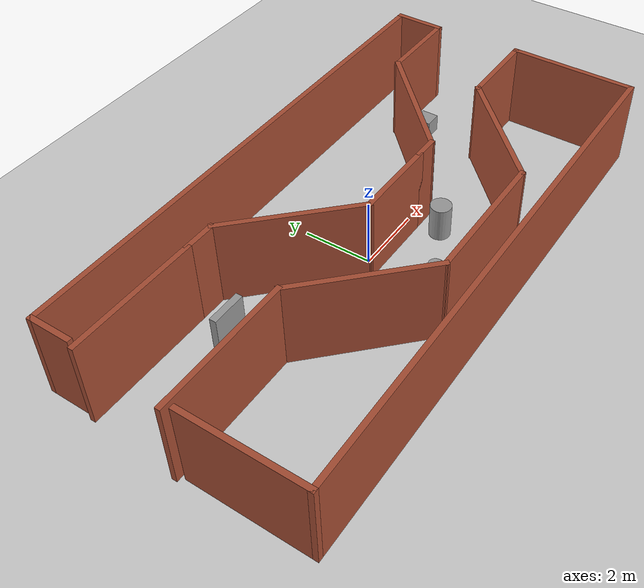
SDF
<sdf version="1.6">
 <world name="default">
  <plugin name="ros_interface_plugin" filename="librotors_gazebo_ros_interface_plugin.so"/>
  <plugin name="gazebo_octomap" filename="librotors_gazebo_octomap_plugin.so"/>
  <light name="sun" type="directional">
   <pose>0 0 10 0 -0 0</pose>
   <diffuse>0.8 0.8 0.8 1</diffuse>
   <specular>0.1 0.1 0.1 1</specular>
   <attenuation>
    <range>1000</range>
    <constant>0.9</constant>
    <linear>0.01</linear>
    <quadratic>0.001</quadratic>
   </attenuation>
   <direction>-0.5 0.5 -1</direction>
  </light>
  <model name="ground_plane">
   <static>1</static>
   <link name="link">
    <collision name="collision">
     <geometry><plane><normal>0 0 1</normal><size>100 100</size></plane></geometry>
     <surface><friction><ode><mu>100</mu><mu2>50</mu2></ode></friction></surface>
    </collision>
    <visual name="visual">
     <cast_shadows>0</cast_shadows>
     <geometry><plane><normal>0 0 1</normal><size>100 100</size></plane></geometry>
     <material>
      <script><uri>file://media/materials/scripts/gazebo.material</uri><name>Gazebo/Grey</name></script>
     </material>
    </visual>
   </link>
  </model>
  <gravity>0 0 -9.8</gravity>
  <magnetic_field>6e-06 2.3e-05 -4.2e-05</magnetic_field>
  <atmosphere type="adiabatic"/>
  <physics name="default_physics" default="0" type="ode">
   <max_step_size>0.001</max_step_size>
   <real_time_factor>1</real_time_factor>
   <real_time_update_rate>1000</real_time_update_rate>
  </physics>
  <scene><ambient>0.4 0.4 0.4 1</ambient><background>0.7 0.7 0.7 1</background><shadows>1</shadows></scene>
  <spherical_coordinates>
   <surface_model>EARTH_WGS84</surface_model>
   <latitude_deg>0</latitude_deg>
   <longitude_deg>0</longitude_deg>
   <elevation>0</elevation>
   <heading_deg>0</heading_deg>
  </spherical_coordinates>
  <model name="map_reduced2">
   <link name="Wall_0">
    <collision name="Wall_0_Collision">
     <geometry><box><size>4 0.15 2.5</size></box></geometry>
     <pose>0 0 1.25 0 -0 0</pose>
    </collision>
    <visual name="Wall_0_Visual">
     <pose>0 0 1.25 0 -0 0</pose>
     <geometry><box><size>4 0.15 2.5</size></box></geometry>
     <material>
      <script><uri>file://media/materials/scripts/gazebo.material</uri><name>Gazebo/Bricks</name></script>
      <ambient>1 1 1 1</ambient>
     </material>
    </visual>
    <pose>-5.82236 -0.160519 0 0 -0 0</pose>
   </link>
   <link name="Wall_1">
    <collision name="Wall_1_Collision">
     <geometry><box><size>4 0.15 2.5</size></box></geometry>
     <pose>0 0 1.25 0 -0 0</pose>
    </collision>
    <visual name="Wall_1_Visual">
     <pose>0 0 1.25 0 -0 0</pose>
     <geometry><box><size>4 0.15 2.5</size></box></geometry>
     <material>
      <script><uri>file://media/materials/scripts/gazebo.material</uri><name>Gazebo/Bricks</name></script>
      <ambient>1 1 1 1</ambient>
     </material>
    </visual>
    <pose>-2.53618 -1.5217 0 0 0 -0.785398</pose>
   </link>
   <link name="Wall_10">
    <collision name="Wall_10_Collision">
     <geometry><box><size>1 0.15 2.5</size></box></geometry>
     <pose>0 0 1.25 0 -0 0</pose>
    </collision>
    <visual name="Wall_10_Visual">
     <pose>0 0 1.25 0 -0 0</pose>
     <geometry><box><size>1 0.15 2.5</size></box></geometry>
     <material>
      <script><uri>file://media/materials/scripts/gazebo.material</uri><name>Gazebo/Bricks</name></script>
      <ambient>1 1 1 1</ambient>
     </material>
    </visual>
    <pose>-3.56495 2.41052 0 0 -0 0</pose>
   </link>
   <link name="Wall_11">
    <collision name="Wall_11_Collision">
     <geometry><box><size>4 0.15 2.5</size></box></geometry>
     <pose>0 0 1.25 0 -0 0</pose>
    </collision>
    <visual name="Wall_11_Visual">
     <pose>0 0 1.25 0 -0 0</pose>
     <geometry><box><size>4 0.15 2.5</size></box></geometry>
     <material>
      <script><uri>file://media/materials/scripts/gazebo.material</uri><name>Gazebo/Bricks</name></script>
      <ambient>1 1 1 1</ambient>
     </material>
    </visual>
    <pose>-1.77877 1.04934 0 0 0 -0.785398</pose>
   </link>
   <link name="Wall_12">
    <collision name="Wall_12_Collision">
     <geometry><box><size>2.5 0.15 2.5</size></box></geometry>
     <pose>0 0 1.25 0 -0 0</pose>
    </collision>
    <visual name="Wall_12_Visual">
     <pose>0 0 1.25 0 -0 0</pose>
     <geometry><box><size>2.5 0.15 2.5</size></box></geometry>
     <material>
      <script><uri>file://media/materials/scripts/gazebo.material</uri><name>Gazebo/Bricks</name></script>
      <ambient>1 1 1 1</ambient>
     </material>
    </visual>
    <pose>0.75741 -0.311842 0 0 -0 0</pose>
   </link>
   <link name="Wall_13">
    <collision name="Wall_13_Collision">
     <geometry><box><size>0.75 0.15 2.5</size></box></geometry>
     <pose>0 0 1.25 0 -0 0</pose>
    </collision>
    <visual name="Wall_13_Visual">
     <pose>0 0 1.25 0 -0 0</pose>
     <geometry><box><size>0.75 0.15 2.5</size></box></geometry>
     <material>
      <script><uri>file://media/materials/scripts/gazebo.material</uri><name>Gazebo/Bricks</name></script>
      <ambient>1 1 1 1</ambient>
     </material>
    </visual>
    <pose>2.23241 -0.311842 0 0 -0 0</pose>
   </link>
   <link name="Wall_14">
    <collision name="Wall_14_Collision">
     <geometry><box><size>4 0.15 2.5</size></box></geometry>
     <pose>0 0 1.25 0 -0 0</pose>
    </collision>
    <visual name="Wall_14_Visual">
     <pose>0 0 1.25 0 -0 0</pose>
     <geometry><box><size>4 0.15 2.5</size></box></geometry>
     <material>
      <script><uri>file://media/materials/scripts/gazebo.material</uri><name>Gazebo/Bricks</name></script>
      <ambient>1 1 1 1</ambient>
     </material>
    </visual>
    <pose>3.89359 1.04934 0 0 -0 0.785398</pose>
   </link>
   <link name="Wall_15">
    <collision name="Wall_15_Collision">
     <geometry><box><size>2.5 0.15 2.5</size></box></geometry>
     <pose>0 0 1.25 0 -0 0</pose>
    </collision>
    <visual name="Wall_15_Visual">
     <pose>0 0 1.25 0 -0 0</pose>
     <geometry><box><size>2.5 0.15 2.5</size></box></geometry>
     <material>
      <script><uri>file://media/materials/scripts/gazebo.material</uri><name>Gazebo/Bricks</name></script>
      <ambient>1 1 1 1</ambient>
     </material>
    </visual>
    <pose>6.42977 2.41052 0 0 -0 0</pose>
   </link>
   <link name="Wall_16">
    <collision name="Wall_16_Collision">
     <geometry><box><size>1.5 0.15 2.5</size></box></geometry>
     <pose>0 0 1.25 0 -0 0</pose>
    </collision>
    <visual name="Wall_16_Visual">
     <pose>0 0 1.25 0 -0 0</pose>
     <geometry><box><size>1.5 0.15 2.5</size></box></geometry>
     <material>
      <script><uri>file://media/materials/scripts/gazebo.material</uri><name>Gazebo/Bricks</name></script>
      <ambient>1 1 1 1</ambient>
     </material>
    </visual>
    <pose>7.60477 3.08552 0 0 -0 1.5708</pose>
   </link>
   <link name="Wall_17">
    <collision name="Wall_17_Collision">
     <geometry><box><size>15.25 0.15 2.5</size></box></geometry>
     <pose>0 0 1.25 0 -0 0</pose>
    </collision>
    <visual name="Wall_17_Visual">
     <pose>0 0 1.25 0 -0 0</pose>
     <geometry><box><size>15.25 0.15 2.5</size></box></geometry>
     <material>
      <script><uri>file://media/materials/scripts/gazebo.material</uri><name>Gazebo/Bricks</name></script>
      <ambient>1 1 1 1</ambient>
     </material>
    </visual>
    <pose>0.054771 3.76052 0 0 -0 3.14159</pose>
   </link>
   <link name="Wall_18">
    <collision name="Wall_18_Collision">
     <geometry><box><size>1.25 0.15 2.5</size></box></geometry>
     <pose>0 0 1.25 0 -0 0</pose>
    </collision>
    <visual name="Wall_18_Visual">
     <pose>0 0 1.25 0 -0 0</pose>
     <geometry><box><size>1.25 0.15 2.5</size></box></geometry>
     <material>
      <script><uri>file://media/materials/scripts/gazebo.material</uri><name>Gazebo/Bricks</name></script>
      <ambient>1 1 1 1</ambient>
     </material>
    </visual>
    <pose>-7.49523 3.21052 0 0 0 -1.5708</pose>
   </link>
   <link name="Wall_2">
    <collision name="Wall_2_Collision">
     <geometry><box><size>4 0.15 2.5</size></box></geometry>
     <pose>0 0 1.25 0 -0 0</pose>
    </collision>
    <visual name="Wall_2_Visual">
     <pose>0 0 1.25 0 -0 0</pose>
     <geometry><box><size>4 0.15 2.5</size></box></geometry>
     <material>
      <script><uri>file://media/materials/scripts/gazebo.material</uri><name>Gazebo/Bricks</name></script>
      <ambient>1 1 1 1</ambient>
     </material>
    </visual>
    <pose>0.75 -2.88288 0 0 -0 0</pose>
   </link>
   <link name="Wall_3">
    <collision name="Wall_3_Collision">
     <geometry><box><size>4 0.15 2.5</size></box></geometry>
     <pose>0 0 1.25 0 -0 0</pose>
    </collision>
    <visual name="Wall_3_Visual">
     <pose>0 0 1.25 0 -0 0</pose>
     <geometry><box><size>4 0.15 2.5</size></box></geometry>
     <material>
      <script><uri>file://media/materials/scripts/gazebo.material</uri><name>Gazebo/Bricks</name></script>
      <ambient>1 1 1 1</ambient>
     </material>
    </visual>
    <pose>4.03618 -1.5217 0 0 -0 0.785398</pose>
   </link>
   <link name="Wall_4">
    <collision name="Wall_4_Collision">
     <geometry><box><size>2.5 0.15 2.5</size></box></geometry>
     <pose>0 0 1.25 0 -0 0</pose>
    </collision>
    <visual name="Wall_4_Visual">
     <pose>0 0 1.25 0 -0 0</pose>
     <geometry><box><size>2.5 0.15 2.5</size></box></geometry>
     <material>
      <script><uri>file://media/materials/scripts/gazebo.material</uri><name>Gazebo/Bricks</name></script>
      <ambient>1 1 1 1</ambient>
     </material>
    </visual>
    <pose>6.57236 -0.160519 0 0 -0 0</pose>
   </link>
   <link name="Wall_5">
    <collision name="Wall_5_Collision">
     <geometry><box><size>3.75 0.15 2.5</size></box></geometry>
     <pose>0 0 1.25 0 -0 0</pose>
    </collision>
    <visual name="Wall_5_Visual">
     <pose>0 0 1.25 0 -0 0</pose>
     <geometry><box><size>3.75 0.15 2.5</size></box></geometry>
     <material>
      <script><uri>file://media/materials/scripts/gazebo.material</uri><name>Gazebo/Bricks</name></script>
      <ambient>1 1 1 1</ambient>
     </material>
    </visual>
    <pose>7.74736 -1.96052 0 0 0 -1.5708</pose>
   </link>
   <link name="Wall_6">
    <collision name="Wall_6_Collision">
     <geometry><box><size>15.5 0.15 2.5</size></box></geometry>
     <pose>0 0 1.25 0 -0 0</pose>
    </collision>
    <visual name="Wall_6_Visual">
     <pose>0 0 1.25 0 -0 0</pose>
     <geometry><box><size>15.5 0.15 2.5</size></box></geometry>
     <material>
      <script><uri>file://media/materials/scripts/gazebo.material</uri><name>Gazebo/Bricks</name></script>
      <ambient>1 1 1 1</ambient>
     </material>
    </visual>
    <pose>0.072361 -3.76052 0 0 -0 3.14159</pose>
   </link>
   <link name="Wall_7">
    <collision name="Wall_7_Collision">
     <geometry><box><size>3.5 0.15 2.5</size></box></geometry>
     <pose>0 0 1.25 0 -0 0</pose>
    </collision>
    <visual name="Wall_7_Visual">
     <pose>0 0 1.25 0 -0 0</pose>
     <geometry><box><size>3.5 0.15 2.5</size></box></geometry>
     <material>
      <script><uri>file://media/materials/scripts/gazebo.material</uri><name>Gazebo/Bricks</name></script>
      <ambient>1 1 1 1</ambient>
     </material>
    </visual>
    <pose>-7.60264 -2.08552 0 0 -0 1.5708</pose>
   </link>
   <link name="Wall_9">
    <collision name="Wall_9_Collision">
     <geometry><box><size>3.75 0.15 2.5</size></box></geometry>
     <pose>0 0 1.25 0 -0 0</pose>
    </collision>
    <visual name="Wall_9_Visual">
     <pose>0 0 1.25 0 -0 0</pose>
     <geometry><box><size>3.75 0.15 2.5</size></box></geometry>
     <material>
      <script><uri>file://media/materials/scripts/gazebo.material</uri><name>Gazebo/Bricks</name></script>
      <ambient>1 1 1 1</ambient>
     </material>
    </visual>
    <pose>-5.78995 2.41052 0 0 -0 0</pose>
   </link>
   <static>1</static>
  </model>
  <model name="obst1">
   <link name="link_0">
    <inertial>
     <mass>1</mass>
     <inertia>
      <ixx>0.166667</ixx>
      <ixy>0</ixy>
      <ixz>0</ixz>
      <iyy>0.166667</iyy>
      <iyz>0</iyz>
      <izz>0.166667</izz>
     </inertia>
    </inertial>
    <visual name="visual">
     <geometry><box><size>0.5 0.5 0.5</size></box></geometry>
     <material>
      <lighting>1</lighting>
      <script><uri>file://media/materials/scripts/gazebo.material</uri><name>Gazebo/Grey</name></script>
      <ambient>0.3 0.3 0.3 1</ambient>
      <diffuse>0.7 0.7 0.7 1</diffuse>
      <specular>0.01 0.01 0.01 1</specular>
      <emissive>0 0 0 1</emissive>
      <shader type="vertex"><normal_map>__default__</normal_map></shader>
     </material>
    </visual>
    <collision name="collision">
     <geometry><box><size>0.5 0.5 0.5</size></box></geometry>
     <surface>
      <friction>
       <ode><mu>1</mu><mu2>1</mu2><fdir1>0 0 0</fdir1><slip1>0</slip1><slip2>0</slip2></ode>
       <torsional>
        <coefficient>1</coefficient>
        <patch_radius>0</patch_radius>
        <surface_radius>0</surface_radius>
        <use_patch_radius>1</use_patch_radius>
        <ode><slip>0</slip></ode>
       </torsional>
      </friction>
      <bounce><restitution_coefficient>0</restitution_coefficient><threshold>1e+06</threshold></bounce>
      <contact>
       <collide_without_contact>0</collide_without_contact>
       <collide_without_contact_bitmask>1</collide_without_contact_bitmask>
       <collide_bitmask>1</collide_bitmask>
       <ode>
        <soft_cfm>0</soft_cfm>
        <soft_erp>0.2</soft_erp>
        <kp>1e+13</kp>
        <kd>1</kd>
        <max_vel>0.01</max_vel>
        <min_depth>0</min_depth>
       </ode>
       <bullet>
        <split_impulse>1</split_impulse>
        <split_impulse_penetration_threshold>-0.01</split_impulse_penetration_threshold>
        <soft_cfm>0</soft_cfm>
        <soft_erp>0.2</soft_erp>
        <kp>1e+13</kp>
        <kd>1</kd>
       </bullet>
      </contact>
     </surface>
    </collision>
   </link>
   <static>0</static>
   <pose>5.5 1.52536 0.5 0 -0 0</pose>
  </model>
  <model name="obst2">
   <link name="link_1">
    <inertial>
     <mass>1</mass>
     <inertia><ixx>0.145833</ixx><ixy>0</ixy><ixz>0</ixz><iyy>0.145833</iyy><iyz>0</iyz><izz>0.125</izz></inertia>
    </inertial>
    <visual name="visual">
     <geometry><cylinder><radius>0.3</radius><length>1</length></cylinder></geometry>
     <material>
      <lighting>1</lighting>
      <script><uri>file://media/materials/scripts/gazebo.material</uri><name>Gazebo/Grey</name></script>
      <ambient>0.3 0.3 0.3 1</ambient>
      <diffuse>0.7 0.7 0.7 1</diffuse>
      <specular>0.01 0.01 0.01 1</specular>
      <emissive>0 0 0 1</emissive>
      <shader type="vertex"><normal_map>__default__</normal_map></shader>
     </material>
    </visual>
    <collision name="collision">
     <geometry><cylinder><radius>0.3</radius><length>1</length></cylinder></geometry>
     <surface>
      <friction>
       <ode><mu>1</mu><mu2>1</mu2><fdir1>0 0 0</fdir1><slip1>0</slip1><slip2>0</slip2></ode>
       <torsional>
        <coefficient>1</coefficient>
        <patch_radius>0</patch_radius>
        <surface_radius>0</surface_radius>
        <use_patch_radius>1</use_patch_radius>
        <ode><slip>0</slip></ode>
       </torsional>
      </friction>
      <bounce><restitution_coefficient>0</restitution_coefficient><threshold>1e+06</threshold></bounce>
      <contact>
       <collide_without_contact>0</collide_without_contact>
       <collide_without_contact_bitmask>1</collide_without_contact_bitmask>
       <collide_bitmask>1</collide_bitmask>
       <ode>
        <soft_cfm>0</soft_cfm>
        <soft_erp>0.2</soft_erp>
        <kp>1e+13</kp>
        <kd>1</kd>
        <max_vel>0.01</max_vel>
        <min_depth>0</min_depth>
       </ode>
       <bullet>
        <split_impulse>1</split_impulse>
        <split_impulse_penetration_threshold>-0.01</split_impulse_penetration_threshold>
        <soft_cfm>0</soft_cfm>
        <soft_erp>0.2</soft_erp>
        <kp>1e+13</kp>
        <kd>1</kd>
       </bullet>
      </contact>
     </surface>
    </collision>
   </link>
   <static>0</static>
   <pose>2 -1 0.5 0 -0 0</pose>
  </model>
  <model name="obst3">
   <link name="link_2">
    <inertial>
     <mass>1</mass>
     <inertia><ixx>0.145833</ixx><ixy>0</ixy><ixz>0</ixz><iyy>0.145833</iyy><iyz>0</iyz><izz>0.125</izz></inertia>
    </inertial>
    <visual name="visual">
     <geometry><cylinder><radius>0.2</radius><length>1</length></cylinder></geometry>
     <material>
      <lighting>1</lighting>
      <script><uri>file://media/materials/scripts/gazebo.material</uri><name>Gazebo/Grey</name></script>
      <ambient>0.3 0.3 0.3 1</ambient>
      <diffuse>0.7 0.7 0.7 1</diffuse>
      <specular>0.01 0.01 0.01 1</specular>
      <emissive>0 0 0 1</emissive>
      <shader type="vertex"><normal_map>__default__</normal_map></shader>
     </material>
    </visual>
    <collision name="collision">
     <geometry><cylinder><radius>0.2</radius><length>1</length></cylinder></geometry>
     <surface>
      <friction>
       <ode><mu>1</mu><mu2>1</mu2><fdir1>0 0 0</fdir1><slip1>0</slip1><slip2>0</slip2></ode>
       <torsional>
        <coefficient>1</coefficient>
        <patch_radius>0</patch_radius>
        <surface_radius>0</surface_radius>
        <use_patch_radius>1</use_patch_radius>
        <ode><slip>0</slip></ode>
       </torsional>
      </friction>
      <bounce><restitution_coefficient>0</restitution_coefficient><threshold>1e+06</threshold></bounce>
      <contact>
       <collide_without_contact>0</collide_without_contact>
       <collide_without_contact_bitmask>1</collide_without_contact_bitmask>
       <collide_bitmask>1</collide_bitmask>
       <ode>
        <soft_cfm>0</soft_cfm>
        <soft_erp>0.2</soft_erp>
        <kp>1e+13</kp>
        <kd>1</kd>
        <max_vel>0.01</max_vel>
        <min_depth>0</min_depth>
       </ode>
       <bullet>
        <split_impulse>1</split_impulse>
        <split_impulse_penetration_threshold>-0.01</split_impulse_penetration_threshold>
        <soft_cfm>0</soft_cfm>
        <soft_erp>0.2</soft_erp>
        <kp>1e+13</kp>
        <kd>1</kd>
       </bullet>
      </contact>
     </surface>
    </collision>
   </link>
   <static>0</static>
   <pose>0 -2 0.5 0 -0 0</pose>
  </model>
  <model name="obst4">
   <link name="link_3">
    <inertial>
     <mass>1</mass>
     <inertia>
      <ixx>0.166667</ixx>
      <ixy>0</ixy>
      <ixz>0</ixz>
      <iyy>0.166667</iyy>
      <iyz>0</iyz>
      <izz>0.166667</izz>
     </inertia>
    </inertial>
    <visual name="visual">
     <geometry><box><size>1 0.2 1</size></box></geometry>
     <material>
      <lighting>1</lighting>
      <script><uri>file://media/materials/scripts/gazebo.material</uri><name>Gazebo/Grey</name></script>
      <ambient>0.3 0.3 0.3 1</ambient>
      <diffuse>0.7 0.7 0.7 1</diffuse>
      <specular>0.01 0.01 0.01 1</specular>
      <emissive>0 0 0 1</emissive>
      <shader type="vertex"><normal_map>__default__</normal_map></shader>
     </material>
    </visual>
    <collision name="collision">
     <geometry><box><size>1 0.2 1</size></box></geometry>
     <surface>
      <friction>
       <ode><mu>1</mu><mu2>1</mu2><fdir1>0 0 0</fdir1><slip1>0</slip1><slip2>0</slip2></ode>
       <torsional>
        <coefficient>1</coefficient>
        <patch_radius>0</patch_radius>
        <surface_radius>0</surface_radius>
        <use_patch_radius>1</use_patch_radius>
        <ode><slip>0</slip></ode>
       </torsional>
      </friction>
      <bounce><restitution_coefficient>0</restitution_coefficient><threshold>1e+06</threshold></bounce>
      <contact>
       <collide_without_contact>0</collide_without_contact>
       <collide_without_contact_bitmask>1</collide_without_contact_bitmask>
       <collide_bitmask>1</collide_bitmask>
       <ode>
        <soft_cfm>0</soft_cfm>
        <soft_erp>0.2</soft_erp>
        <kp>1e+13</kp>
        <kd>1</kd>
        <max_vel>0.01</max_vel>
        <min_depth>0</min_depth>
       </ode>
       <bullet>
        <split_impulse>1</split_impulse>
        <split_impulse_penetration_threshold>-0.01</split_impulse_penetration_threshold>
        <soft_cfm>0</soft_cfm>
        <soft_erp>0.2</soft_erp>
        <kp>1e+13</kp>
        <kd>1</kd>
       </bullet>
      </contact>
     </surface>
    </collision>
   </link>
   <static>0</static>
   <pose>-4 1.4442 0.5 0 -0 0</pose>
  </model>
  <model name="obst5">
   <link name="link_4">
    <inertial>
     <mass>1</mass>
     <inertia><ixx>0.1</ixx><ixy>0</ixy><ixz>0</ixz><iyy>0.1</iyy><iyz>0</iyz><izz>0.1</izz></inertia>
    </inertial>
    <visual name="visual">
     <geometry><sphere><radius>0.2</radius></sphere></geometry>
     <material>
      <lighting>1</lighting>
      <script><uri>file://media/materials/scripts/gazebo.material</uri><name>Gazebo/Grey</name></script>
      <ambient>0.3 0.3 0.3 1</ambient>
      <diffuse>0.7 0.7 0.7 1</diffuse>
      <specular>0.01 0.01 0.01 1</specular>
      <emissive>0 0 0 1</emissive>
      <shader type="vertex"><normal_map>__default__</normal_map></shader>
     </material>
    </visual>
    <collision name="collision">
     <geometry><sphere><radius>0.2</radius></sphere></geometry>
     <surface>
      <friction>
       <ode><mu>1</mu><mu2>1</mu2><fdir1>0 0 0</fdir1><slip1>0</slip1><slip2>0</slip2></ode>
       <torsional>
        <coefficient>1</coefficient>
        <patch_radius>0</patch_radius>
        <surface_radius>0</surface_radius>
        <use_patch_radius>1</use_patch_radius>
        <ode><slip>0</slip></ode>
       </torsional>
      </friction>
      <bounce><restitution_coefficient>0</restitution_coefficient><threshold>1e+06</threshold></bounce>
      <contact>
       <collide_without_contact>0</collide_without_contact>
       <collide_without_contact_bitmask>1</collide_without_contact_bitmask>
       <collide_bitmask>1</collide_bitmask>
       <ode>
        <soft_cfm>0</soft_cfm>
        <soft_erp>0.2</soft_erp>
        <kp>1e+13</kp>
        <kd>1</kd>
        <max_vel>0.01</max_vel>
        <min_depth>0</min_depth>
       </ode>
       <bullet>
        <split_impulse>1</split_impulse>
        <split_impulse_penetration_threshold>-0.01</split_impulse_penetration_threshold>
        <soft_cfm>0</soft_cfm>
        <soft_erp>0.2</soft_erp>
        <kp>1e+13</kp>
        <kd>1</kd>
       </bullet>
      </contact>
     </surface>
    </collision>
   </link>
   <static>0</static>
   <pose>-7 0.571915 0.5 0 -0 0</pose>
  </model>
 </world>
</sdf>
